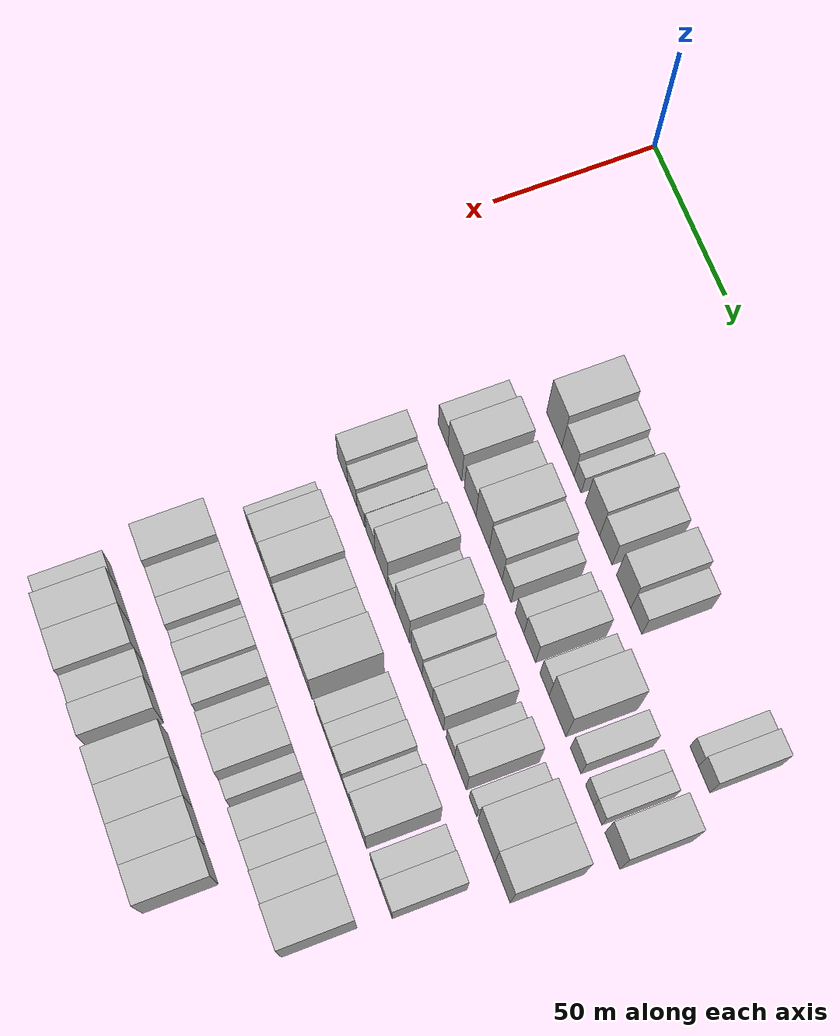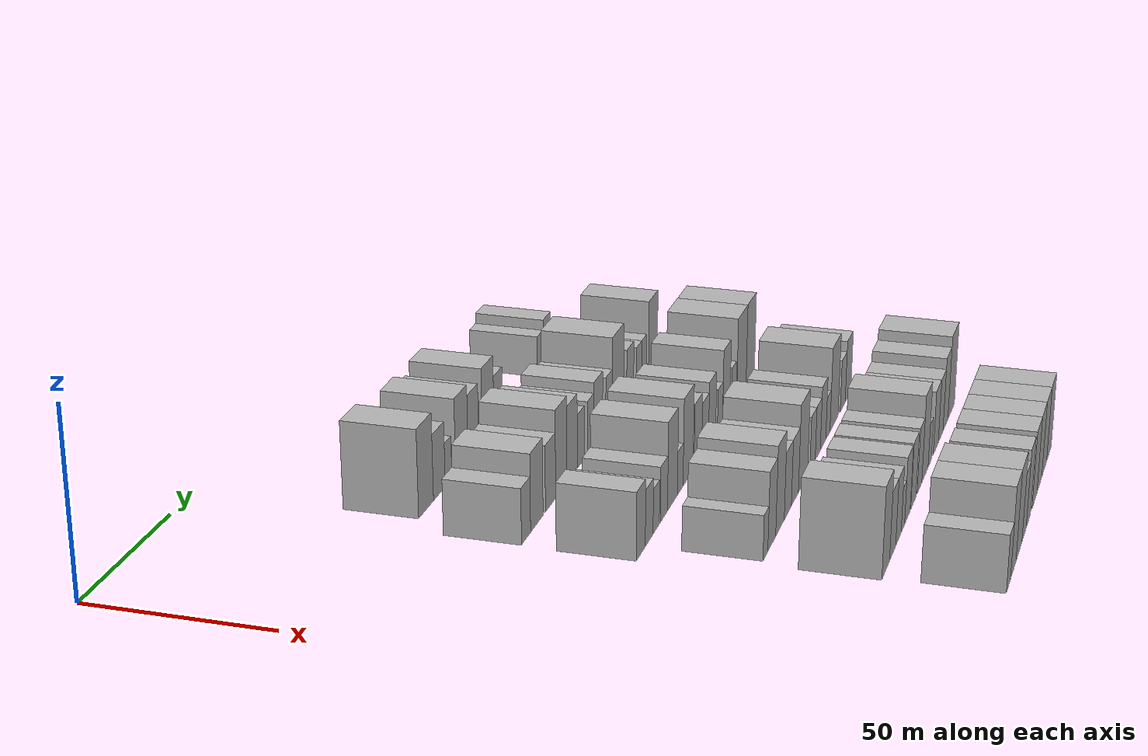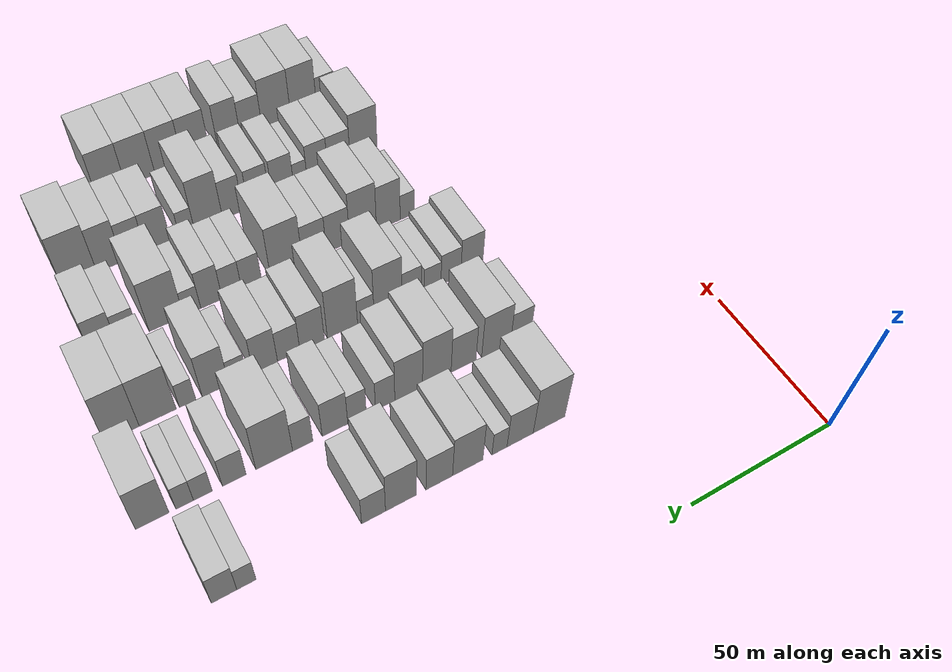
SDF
<sdf version="1.6">
 <world name="default">
  <model name="building_55">
   <static>1</static>
   <pose>50.0000 70.1673 0 0.000000 0.000000 0.000000</pose>
   <link name="link">
    <pose>0 0 12.00 0 0 0</pose>
    <collision name="collision"><geometry><box><size>20.0000 10.9141 24.0000</size></box></geometry></collision>
    <visual name="visual">
     <cast_shadows>0</cast_shadows>
     <geometry><box><size>20.0000 10.9141 24.0000</size></box></geometry>
     <material>
      <script>
       <uri>model://HANNAS_wall/materials/scripts</uri>
       <uri>model://HANNAS_wall/materials/textures</uri>
       <name>vrc/HANNAS_wall</name>
      </script>
     </material>
    </visual>
   </link>
  </model>
  <model name="building_56">
   <static>1</static>
   <pose>50.0000 80.0565 0 0.000000 0.000000 0.000000</pose>
   <link name="link">
    <pose>0 0 9.00 0 0 0</pose>
    <collision name="collision"><geometry><box><size>20.0000 8.8642 18.0000</size></box></geometry></collision>
    <visual name="visual">
     <cast_shadows>0</cast_shadows>
     <geometry><box><size>20.0000 8.8642 18.0000</size></box></geometry>
     <material>
      <script>
       <uri>model://HANNAS_wall/materials/scripts</uri>
       <uri>model://HANNAS_wall/materials/textures</uri>
       <name>vrc/HANNAS_wall</name>
      </script>
     </material>
    </visual>
   </link>
  </model>
  <model name="building_57">
   <static>1</static>
   <pose>50.0000 87.0178 0 0.000000 0.000000 0.000000</pose>
   <link name="link">
    <pose>0 0 6.00 0 0 0</pose>
    <collision name="collision"><geometry><box><size>20.0000 5.0583 12.0000</size></box></geometry></collision>
    <visual name="visual">
     <cast_shadows>0</cast_shadows>
     <geometry><box><size>20.0000 5.0583 12.0000</size></box></geometry>
     <material>
      <script>
       <uri>model://HANNAS_wall/materials/scripts</uri>
       <uri>model://HANNAS_wall/materials/textures</uri>
       <name>vrc/HANNAS_wall</name>
      </script>
     </material>
    </visual>
   </link>
  </model>
  <model name="building_58">
   <static>1</static>
   <pose>50.0000 97.5212 0 0.000000 0.000000 0.000000</pose>
   <link name="link">
    <pose>0 0 10.50 0 0 0</pose>
    <collision name="collision"><geometry><box><size>20.0000 9.9485 21.0000</size></box></geometry></collision>
    <visual name="visual">
     <cast_shadows>0</cast_shadows>
     <geometry><box><size>20.0000 9.9485 21.0000</size></box></geometry>
     <material>
      <script>
       <uri>model://HANNAS_wall/materials/scripts</uri>
       <uri>model://HANNAS_wall/materials/textures</uri>
       <name>vrc/HANNAS_wall</name>
      </script>
     </material>
    </visual>
   </link>
  </model>
  <model name="building_59">
   <static>1</static>
   <pose>50.0000 106.7962 0 0.000000 0.000000 0.000000</pose>
   <link name="link">
    <pose>0 0 9.00 0 0 0</pose>
    <collision name="collision"><geometry><box><size>20.0000 8.6015 18.0000</size></box></geometry></collision>
    <visual name="visual">
     <cast_shadows>0</cast_shadows>
     <geometry><box><size>20.0000 8.6015 18.0000</size></box></geometry>
     <material>
      <script>
       <uri>model://HANNAS_wall/materials/scripts</uri>
       <uri>model://HANNAS_wall/materials/textures</uri>
       <name>vrc/HANNAS_wall</name>
      </script>
     </material>
    </visual>
   </link>
  </model>
  <model name="building_60">
   <static>1</static>
   <pose>50.0000 118.9928 0 0.000000 0.000000 0.000000</pose>
   <link name="link">
    <pose>0 0 10.50 0 0 0</pose>
    <collision name="collision"><geometry><box><size>20.0000 9.7918 21.0000</size></box></geometry></collision>
    <visual name="visual">
     <cast_shadows>0</cast_shadows>
     <geometry><box><size>20.0000 9.7918 21.0000</size></box></geometry>
     <material>
      <script>
       <uri>model://HANNAS_wall/materials/scripts</uri>
       <uri>model://HANNAS_wall/materials/textures</uri>
       <name>vrc/HANNAS_wall</name>
      </script>
     </material>
    </visual>
   </link>
  </model>
  <model name="building_61">
   <static>1</static>
   <pose>50.0000 127.6068 0 0.000000 0.000000 0.000000</pose>
   <link name="link">
    <pose>0 0 7.50 0 0 0</pose>
    <collision name="collision"><geometry><box><size>20.0000 7.4362 15.0000</size></box></geometry></collision>
    <visual name="visual">
     <cast_shadows>0</cast_shadows>
     <geometry><box><size>20.0000 7.4362 15.0000</size></box></geometry>
     <material>
      <script>
       <uri>model://HANNAS_wall/materials/scripts</uri>
       <uri>model://HANNAS_wall/materials/textures</uri>
       <name>vrc/HANNAS_wall</name>
      </script>
     </material>
    </visual>
   </link>
  </model>
  <model name="building_62">
   <static>1</static>
   <pose>50.0000 165.6647 0 0.000000 0.000000 0.000000</pose>
   <link name="link">
    <pose>0 0 6.00 0 0 0</pose>
    <collision name="collision"><geometry><box><size>20.0000 5.5599 12.0000</size></box></geometry></collision>
    <visual name="visual">
     <cast_shadows>0</cast_shadows>
     <geometry><box><size>20.0000 5.5599 12.0000</size></box></geometry>
     <material>
      <script>
       <uri>model://HANNAS_wall/materials/scripts</uri>
       <uri>model://HANNAS_wall/materials/textures</uri>
       <name>vrc/HANNAS_wall</name>
      </script>
     </material>
    </visual>
   </link>
  </model>
  <model name="building_63">
   <static>1</static>
   <pose>50.0000 172.0886 0 0.000000 0.000000 0.000000</pose>
   <link name="link">
    <pose>0 0 7.50 0 0 0</pose>
    <collision name="collision"><geometry><box><size>20.0000 7.2879 15.0000</size></box></geometry></collision>
    <visual name="visual">
     <cast_shadows>0</cast_shadows>
     <geometry><box><size>20.0000 7.2879 15.0000</size></box></geometry>
     <material>
      <script>
       <uri>model://HANNAS_wall/materials/scripts</uri>
       <uri>model://HANNAS_wall/materials/textures</uri>
       <name>vrc/HANNAS_wall</name>
      </script>
     </material>
    </visual>
   </link>
  </model>
  <model name="building_159">
   <static>1</static>
   <pose>79.0000 61.1134 0 0.000000 0.000000 0.000000</pose>
   <link name="link">
    <pose>0 0 7.50 0 0 0</pose>
    <collision name="collision"><geometry><box><size>20.0000 7.3137 15.0000</size></box></geometry></collision>
    <visual name="visual">
     <cast_shadows>0</cast_shadows>
     <geometry><box><size>20.0000 7.3137 15.0000</size></box></geometry>
     <material>
      <script>
       <uri>model://HANNAS_wall/materials/scripts</uri>
       <uri>model://HANNAS_wall/materials/textures</uri>
       <name>vrc/HANNAS_wall</name>
      </script>
     </material>
    </visual>
   </link>
  </model>
  <model name="building_160">
   <static>1</static>
   <pose>79.0000 69.8865 0 0.000000 0.000000 0.000000</pose>
   <link name="link">
    <pose>0 0 10.50 0 0 0</pose>
    <collision name="collision"><geometry><box><size>20.0000 10.2325 21.0000</size></box></geometry></collision>
    <visual name="visual">
     <cast_shadows>0</cast_shadows>
     <geometry><box><size>20.0000 10.2325 21.0000</size></box></geometry>
     <material>
      <script>
       <uri>model://HANNAS_wall/materials/scripts</uri>
       <uri>model://HANNAS_wall/materials/textures</uri>
       <name>vrc/HANNAS_wall</name>
      </script>
     </material>
    </visual>
   </link>
  </model>
  <model name="building_161">
   <static>1</static>
   <pose>79.0000 81.3385 0 0.000000 0.000000 0.000000</pose>
   <link name="link">
    <pose>0 0 9.00 0 0 0</pose>
    <collision name="collision"><geometry><box><size>20.0000 8.6715 18.0000</size></box></geometry></collision>
    <visual name="visual">
     <cast_shadows>0</cast_shadows>
     <geometry><box><size>20.0000 8.6715 18.0000</size></box></geometry>
     <material>
      <script>
       <uri>model://HANNAS_wall/materials/scripts</uri>
       <uri>model://HANNAS_wall/materials/textures</uri>
       <name>vrc/HANNAS_wall</name>
      </script>
     </material>
    </visual>
   </link>
  </model>
  <model name="building_162">
   <static>1</static>
   <pose>79.0000 90.5679 0 0.000000 0.000000 0.000000</pose>
   <link name="link">
    <pose>0 0 12.00 0 0 0</pose>
    <collision name="collision"><geometry><box><size>20.0000 9.7873 24.0000</size></box></geometry></collision>
    <visual name="visual">
     <cast_shadows>0</cast_shadows>
     <geometry><box><size>20.0000 9.7873 24.0000</size></box></geometry>
     <material>
      <script>
       <uri>model://HANNAS_wall/materials/scripts</uri>
       <uri>model://HANNAS_wall/materials/textures</uri>
       <name>vrc/HANNAS_wall</name>
      </script>
     </material>
    </visual>
   </link>
  </model>
  <model name="building_163">
   <static>1</static>
   <pose>79.0000 100.1142 0 0.000000 0.000000 0.000000</pose>
   <link name="link">
    <pose>0 0 10.50 0 0 0</pose>
    <collision name="collision"><geometry><box><size>20.0000 9.3052 21.0000</size></box></geometry></collision>
    <visual name="visual">
     <cast_shadows>0</cast_shadows>
     <geometry><box><size>20.0000 9.3052 21.0000</size></box></geometry>
     <material>
      <script>
       <uri>model://HANNAS_wall/materials/scripts</uri>
       <uri>model://HANNAS_wall/materials/textures</uri>
       <name>vrc/HANNAS_wall</name>
      </script>
     </material>
    </visual>
   </link>
  </model>
  <model name="building_164">
   <static>1</static>
   <pose>79.0000 107.9700 0 0.000000 0.000000 0.000000</pose>
   <link name="link">
    <pose>0 0 7.50 0 0 0</pose>
    <collision name="collision"><geometry><box><size>20.0000 6.4063 15.0000</size></box></geometry></collision>
    <visual name="visual">
     <cast_shadows>0</cast_shadows>
     <geometry><box><size>20.0000 6.4063 15.0000</size></box></geometry>
     <material>
      <script>
       <uri>model://HANNAS_wall/materials/scripts</uri>
       <uri>model://HANNAS_wall/materials/textures</uri>
       <name>vrc/HANNAS_wall</name>
      </script>
     </material>
    </visual>
   </link>
  </model>
  <model name="building_165">
   <static>1</static>
   <pose>79.0000 117.2138 0 0.000000 0.000000 0.000000</pose>
   <link name="link">
    <pose>0 0 7.50 0 0 0</pose>
    <collision name="collision"><geometry><box><size>20.0000 6.0814 15.0000</size></box></geometry></collision>
    <visual name="visual">
     <cast_shadows>0</cast_shadows>
     <geometry><box><size>20.0000 6.0814 15.0000</size></box></geometry>
     <material>
      <script>
       <uri>model://HANNAS_wall/materials/scripts</uri>
       <uri>model://HANNAS_wall/materials/textures</uri>
       <name>vrc/HANNAS_wall</name>
      </script>
     </material>
    </visual>
   </link>
  </model>
  <model name="building_166">
   <static>1</static>
   <pose>79.0000 124.3797 0 0.000000 0.000000 0.000000</pose>
   <link name="link">
    <pose>0 0 9.00 0 0 0</pose>
    <collision name="collision"><geometry><box><size>20.0000 8.2504 18.0000</size></box></geometry></collision>
    <visual name="visual">
     <cast_shadows>0</cast_shadows>
     <geometry><box><size>20.0000 8.2504 18.0000</size></box></geometry>
     <material>
      <script>
       <uri>model://HANNAS_wall/materials/scripts</uri>
       <uri>model://HANNAS_wall/materials/textures</uri>
       <name>vrc/HANNAS_wall</name>
      </script>
     </material>
    </visual>
   </link>
  </model>
  <model name="building_167">
   <static>1</static>
   <pose>79.0000 134.7165 0 0.000000 0.000000 0.000000</pose>
   <link name="link">
    <pose>0 0 7.50 0 0 0</pose>
    <collision name="collision"><geometry><box><size>20.0000 6.4233 15.0000</size></box></geometry></collision>
    <visual name="visual">
     <cast_shadows>0</cast_shadows>
     <geometry><box><size>20.0000 6.4233 15.0000</size></box></geometry>
     <material>
      <script>
       <uri>model://HANNAS_wall/materials/scripts</uri>
       <uri>model://HANNAS_wall/materials/textures</uri>
       <name>vrc/HANNAS_wall</name>
      </script>
     </material>
    </visual>
   </link>
  </model>
  <model name="building_168">
   <static>1</static>
   <pose>79.0000 143.6607 0 0.000000 0.000000 0.000000</pose>
   <link name="link">
    <pose>0 0 12.00 0 0 0</pose>
    <collision name="collision"><geometry><box><size>20.0000 11.4652 24.0000</size></box></geometry></collision>
    <visual name="visual">
     <cast_shadows>0</cast_shadows>
     <geometry><box><size>20.0000 11.4652 24.0000</size></box></geometry>
     <material>
      <script>
       <uri>model://HANNAS_wall/materials/scripts</uri>
       <uri>model://HANNAS_wall/materials/textures</uri>
       <name>vrc/HANNAS_wall</name>
      </script>
     </material>
    </visual>
   </link>
  </model>
  <model name="building_169">
   <static>1</static>
   <pose>79.0000 156.0137 0 0.000000 0.000000 0.000000</pose>
   <link name="link">
    <pose>0 0 7.50 0 0 0</pose>
    <collision name="collision"><geometry><box><size>20.0000 7.2407 15.0000</size></box></geometry></collision>
    <visual name="visual">
     <cast_shadows>0</cast_shadows>
     <geometry><box><size>20.0000 7.2407 15.0000</size></box></geometry>
     <material>
      <script>
       <uri>model://HANNAS_wall/materials/scripts</uri>
       <uri>model://HANNAS_wall/materials/textures</uri>
       <name>vrc/HANNAS_wall</name>
      </script>
     </material>
    </visual>
   </link>
  </model>
  <model name="building_170">
   <static>1</static>
   <pose>79.0000 165.4747 0 0.000000 0.000000 0.000000</pose>
   <link name="link">
    <pose>0 0 6.00 0 0 0</pose>
    <collision name="collision"><geometry><box><size>20.0000 5.6814 12.0000</size></box></geometry></collision>
    <visual name="visual">
     <cast_shadows>0</cast_shadows>
     <geometry><box><size>20.0000 5.6814 12.0000</size></box></geometry>
     <material>
      <script>
       <uri>model://HANNAS_wall/materials/scripts</uri>
       <uri>model://HANNAS_wall/materials/textures</uri>
       <name>vrc/HANNAS_wall</name>
      </script>
     </material>
    </visual>
   </link>
  </model>
  <model name="building_171">
   <static>1</static>
   <pose>79.0000 170.9212 0 0.000000 0.000000 0.000000</pose>
   <link name="link">
    <pose>0 0 6.00 0 0 0</pose>
    <collision name="collision"><geometry><box><size>20.0000 5.2117 12.0000</size></box></geometry></collision>
    <visual name="visual">
     <cast_shadows>0</cast_shadows>
     <geometry><box><size>20.0000 5.2117 12.0000</size></box></geometry>
     <material>
      <script>
       <uri>model://HANNAS_wall/materials/scripts</uri>
       <uri>model://HANNAS_wall/materials/textures</uri>
       <name>vrc/HANNAS_wall</name>
      </script>
     </material>
    </visual>
   </link>
  </model>
  <model name="building_172">
   <static>1</static>
   <pose>79.0000 180.4384 0 0.000000 0.000000 0.000000</pose>
   <link name="link">
    <pose>0 0 10.50 0 0 0</pose>
    <collision name="collision"><geometry><box><size>20.0000 9.8226 21.0000</size></box></geometry></collision>
    <visual name="visual">
     <cast_shadows>0</cast_shadows>
     <geometry><box><size>20.0000 9.8226 21.0000</size></box></geometry>
     <material>
      <script>
       <uri>model://HANNAS_wall/materials/scripts</uri>
       <uri>model://HANNAS_wall/materials/textures</uri>
       <name>vrc/HANNAS_wall</name>
      </script>
     </material>
    </visual>
   </link>
  </model>
  <model name="building_272">
   <static>1</static>
   <pose>108.0000 60.7946 0 0.000000 0.000000 0.000000</pose>
   <link name="link">
    <pose>0 0 9.00 0 0 0</pose>
    <collision name="collision"><geometry><box><size>20.0000 8.0808 18.0000</size></box></geometry></collision>
    <visual name="visual">
     <cast_shadows>0</cast_shadows>
     <geometry><box><size>20.0000 8.0808 18.0000</size></box></geometry>
     <material>
      <script>
       <uri>model://HANNAS_wall/materials/scripts</uri>
       <uri>model://HANNAS_wall/materials/textures</uri>
       <name>vrc/HANNAS_wall</name>
      </script>
     </material>
    </visual>
   </link>
  </model>
  <model name="building_273">
   <static>1</static>
   <pose>108.0000 68.4565 0 0.000000 0.000000 0.000000</pose>
   <link name="link">
    <pose>0 0 7.50 0 0 0</pose>
    <collision name="collision"><geometry><box><size>20.0000 7.2431 15.0000</size></box></geometry></collision>
    <visual name="visual">
     <cast_shadows>0</cast_shadows>
     <geometry><box><size>20.0000 7.2431 15.0000</size></box></geometry>
     <material>
      <script>
       <uri>model://HANNAS_wall/materials/scripts</uri>
       <uri>model://HANNAS_wall/materials/textures</uri>
       <name>vrc/HANNAS_wall</name>
      </script>
     </material>
    </visual>
   </link>
  </model>
  <model name="building_274">
   <static>1</static>
   <pose>108.0000 75.0674 0 0.000000 0.000000 0.000000</pose>
   <link name="link">
    <pose>0 0 6.00 0 0 0</pose>
    <collision name="collision"><geometry><box><size>20.0000 5.9787 12.0000</size></box></geometry></collision>
    <visual name="visual">
     <cast_shadows>0</cast_shadows>
     <geometry><box><size>20.0000 5.9787 12.0000</size></box></geometry>
     <material>
      <script>
       <uri>model://HANNAS_wall/materials/scripts</uri>
       <uri>model://HANNAS_wall/materials/textures</uri>
       <name>vrc/HANNAS_wall</name>
      </script>
     </material>
    </visual>
   </link>
  </model>
  <model name="building_275">
   <static>1</static>
   <pose>108.0000 82.5405 0 0.000000 0.000000 0.000000</pose>
   <link name="link">
    <pose>0 0 7.50 0 0 0</pose>
    <collision name="collision"><geometry><box><size>20.0000 6.9673 15.0000</size></box></geometry></collision>
    <visual name="visual">
     <cast_shadows>0</cast_shadows>
     <geometry><box><size>20.0000 6.9673 15.0000</size></box></geometry>
     <material>
      <script>
       <uri>model://HANNAS_wall/materials/scripts</uri>
       <uri>model://HANNAS_wall/materials/textures</uri>
       <name>vrc/HANNAS_wall</name>
      </script>
     </material>
    </visual>
   </link>
  </model>
  <model name="building_276">
   <static>1</static>
   <pose>108.0000 90.9466 0 0.000000 0.000000 0.000000</pose>
   <link name="link">
    <pose>0 0 12.00 0 0 0</pose>
    <collision name="collision"><geometry><box><size>20.0000 9.8450 24.0000</size></box></geometry></collision>
    <visual name="visual">
     <cast_shadows>0</cast_shadows>
     <geometry><box><size>20.0000 9.8450 24.0000</size></box></geometry>
     <material>
      <script>
       <uri>model://HANNAS_wall/materials/scripts</uri>
       <uri>model://HANNAS_wall/materials/textures</uri>
       <name>vrc/HANNAS_wall</name>
      </script>
     </material>
    </visual>
   </link>
  </model>
  <model name="building_277">
   <static>1</static>
   <pose>108.0000 98.7513 0 0.000000 0.000000 0.000000</pose>
   <link name="link">
    <pose>0 0 6.00 0 0 0</pose>
    <collision name="collision"><geometry><box><size>20.0000 5.7643 12.0000</size></box></geometry></collision>
    <visual name="visual">
     <cast_shadows>0</cast_shadows>
     <geometry><box><size>20.0000 5.7643 12.0000</size></box></geometry>
     <material>
      <script>
       <uri>model://HANNAS_wall/materials/scripts</uri>
       <uri>model://HANNAS_wall/materials/textures</uri>
       <name>vrc/HANNAS_wall</name>
      </script>
     </material>
    </visual>
   </link>
  </model>
  <model name="building_278">
   <static>1</static>
   <pose>108.0000 106.8181 0 0.000000 0.000000 0.000000</pose>
   <link name="link">
    <pose>0 0 12.00 0 0 0</pose>
    <collision name="collision"><geometry><box><size>20.0000 10.3693 24.0000</size></box></geometry></collision>
    <visual name="visual">
     <cast_shadows>0</cast_shadows>
     <geometry><box><size>20.0000 10.3693 24.0000</size></box></geometry>
     <material>
      <script>
       <uri>model://HANNAS_wall/materials/scripts</uri>
       <uri>model://HANNAS_wall/materials/textures</uri>
       <name>vrc/HANNAS_wall</name>
      </script>
     </material>
    </visual>
   </link>
  </model>
  <model name="building_279">
   <static>1</static>
   <pose>108.0000 117.1142 0 0.000000 0.000000 0.000000</pose>
   <link name="link">
    <pose>0 0 9.00 0 0 0</pose>
    <collision name="collision"><geometry><box><size>20.0000 8.2231 18.0000</size></box></geometry></collision>
    <visual name="visual">
     <cast_shadows>0</cast_shadows>
     <geometry><box><size>20.0000 8.2231 18.0000</size></box></geometry>
     <material>
      <script>
       <uri>model://HANNAS_wall/materials/scripts</uri>
       <uri>model://HANNAS_wall/materials/textures</uri>
       <name>vrc/HANNAS_wall</name>
      </script>
     </material>
    </visual>
   </link>
  </model>
  <model name="building_280">
   <static>1</static>
   <pose>108.0000 124.9634 0 0.000000 0.000000 0.000000</pose>
   <link name="link">
    <pose>0 0 7.50 0 0 0</pose>
    <collision name="collision"><geometry><box><size>20.0000 7.4752 15.0000</size></box></geometry></collision>
    <visual name="visual">
     <cast_shadows>0</cast_shadows>
     <geometry><box><size>20.0000 7.4752 15.0000</size></box></geometry>
     <material>
      <script>
       <uri>model://HANNAS_wall/materials/scripts</uri>
       <uri>model://HANNAS_wall/materials/textures</uri>
       <name>vrc/HANNAS_wall</name>
      </script>
     </material>
    </visual>
   </link>
  </model>
  <model name="building_281">
   <static>1</static>
   <pose>108.0000 132.7012 0 0.000000 0.000000 0.000000</pose>
   <link name="link">
    <pose>0 0 9.00 0 0 0</pose>
    <collision name="collision"><geometry><box><size>20.0000 8.0004 18.0000</size></box></geometry></collision>
    <visual name="visual">
     <cast_shadows>0</cast_shadows>
     <geometry><box><size>20.0000 8.0004 18.0000</size></box></geometry>
     <material>
      <script>
       <uri>model://HANNAS_wall/materials/scripts</uri>
       <uri>model://HANNAS_wall/materials/textures</uri>
       <name>vrc/HANNAS_wall</name>
      </script>
     </material>
    </visual>
   </link>
  </model>
  <model name="building_282">
   <static>1</static>
   <pose>108.0000 141.6350 0 0.000000 0.000000 0.000000</pose>
   <link name="link">
    <pose>0 0 6.00 0 0 0</pose>
    <collision name="collision"><geometry><box><size>20.0000 5.8670 12.0000</size></box></geometry></collision>
    <visual name="visual">
     <cast_shadows>0</cast_shadows>
     <geometry><box><size>20.0000 5.8670 12.0000</size></box></geometry>
     <material>
      <script>
       <uri>model://HANNAS_wall/materials/scripts</uri>
       <uri>model://HANNAS_wall/materials/textures</uri>
       <name>vrc/HANNAS_wall</name>
      </script>
     </material>
    </visual>
   </link>
  </model>
  <model name="building_283">
   <static>1</static>
   <pose>108.0000 148.8267 0 0.000000 0.000000 0.000000</pose>
   <link name="link">
    <pose>0 0 10.50 0 0 0</pose>
    <collision name="collision"><geometry><box><size>20.0000 8.5165 21.0000</size></box></geometry></collision>
    <visual name="visual">
     <cast_shadows>0</cast_shadows>
     <geometry><box><size>20.0000 8.5165 21.0000</size></box></geometry>
     <material>
      <script>
       <uri>model://HANNAS_wall/materials/scripts</uri>
       <uri>model://HANNAS_wall/materials/textures</uri>
       <name>vrc/HANNAS_wall</name>
      </script>
     </material>
    </visual>
   </link>
  </model>
  <model name="building_284">
   <static>1</static>
   <pose>108.0000 157.6839 0 0.000000 0.000000 0.000000</pose>
   <link name="link">
    <pose>0 0 6.00 0 0 0</pose>
    <collision name="collision"><geometry><box><size>20.0000 5.1978 12.0000</size></box></geometry></collision>
    <visual name="visual">
     <cast_shadows>0</cast_shadows>
     <geometry><box><size>20.0000 5.1978 12.0000</size></box></geometry>
     <material>
      <script>
       <uri>model://HANNAS_wall/materials/scripts</uri>
       <uri>model://HANNAS_wall/materials/textures</uri>
       <name>vrc/HANNAS_wall</name>
      </script>
     </material>
    </visual>
   </link>
  </model>
  <model name="building_285">
   <static>1</static>
   <pose>108.0000 166.9945 0 0.000000 0.000000 0.000000</pose>
   <link name="link">
    <pose>0 0 12.00 0 0 0</pose>
    <collision name="collision"><geometry><box><size>20.0000 11.4235 24.0000</size></box></geometry></collision>
    <visual name="visual">
     <cast_shadows>0</cast_shadows>
     <geometry><box><size>20.0000 11.4235 24.0000</size></box></geometry>
     <material>
      <script>
       <uri>model://HANNAS_wall/materials/scripts</uri>
       <uri>model://HANNAS_wall/materials/textures</uri>
       <name>vrc/HANNAS_wall</name>
      </script>
     </material>
    </visual>
   </link>
  </model>
  <model name="building_286">
   <static>1</static>
   <pose>108.0000 178.0056 0 0.000000 0.000000 0.000000</pose>
   <link name="link">
    <pose>0 0 12.00 0 0 0</pose>
    <collision name="collision"><geometry><box><size>20.0000 10.5987 24.0000</size></box></geometry></collision>
    <visual name="visual">
     <cast_shadows>0</cast_shadows>
     <geometry><box><size>20.0000 10.5987 24.0000</size></box></geometry>
     <material>
      <script>
       <uri>model://HANNAS_wall/materials/scripts</uri>
       <uri>model://HANNAS_wall/materials/textures</uri>
       <name>vrc/HANNAS_wall</name>
      </script>
     </material>
    </visual>
   </link>
  </model>
  <model name="building_384">
   <static>1</static>
   <pose>137.0000 67.7495 0 0.000000 0.000000 0.000000</pose>
   <link name="link">
    <pose>0 0 6.00 0 0 0</pose>
    <collision name="collision"><geometry><box><size>20.0000 5.2936 12.0000</size></box></geometry></collision>
    <visual name="visual">
     <cast_shadows>0</cast_shadows>
     <geometry><box><size>20.0000 5.2936 12.0000</size></box></geometry>
     <material>
      <script>
       <uri>model://HANNAS_wall/materials/scripts</uri>
       <uri>model://HANNAS_wall/materials/textures</uri>
       <name>vrc/HANNAS_wall</name>
      </script>
     </material>
    </visual>
   </link>
  </model>
  <model name="building_385">
   <static>1</static>
   <pose>137.0000 74.7967 0 0.000000 0.000000 0.000000</pose>
   <link name="link">
    <pose>0 0 10.50 0 0 0</pose>
    <collision name="collision"><geometry><box><size>20.0000 8.8008 21.0000</size></box></geometry></collision>
    <visual name="visual">
     <cast_shadows>0</cast_shadows>
     <geometry><box><size>20.0000 8.8008 21.0000</size></box></geometry>
     <material>
      <script>
       <uri>model://HANNAS_wall/materials/scripts</uri>
       <uri>model://HANNAS_wall/materials/textures</uri>
       <name>vrc/HANNAS_wall</name>
      </script>
     </material>
    </visual>
   </link>
  </model>
  <model name="building_386">
   <static>1</static>
   <pose>137.0000 84.1135 0 0.000000 0.000000 0.000000</pose>
   <link name="link">
    <pose>0 0 12.00 0 0 0</pose>
    <collision name="collision"><geometry><box><size>20.0000 9.8328 24.0000</size></box></geometry></collision>
    <visual name="visual">
     <cast_shadows>0</cast_shadows>
     <geometry><box><size>20.0000 9.8328 24.0000</size></box></geometry>
     <material>
      <script>
       <uri>model://HANNAS_wall/materials/scripts</uri>
       <uri>model://HANNAS_wall/materials/textures</uri>
       <name>vrc/HANNAS_wall</name>
      </script>
     </material>
    </visual>
   </link>
  </model>
  <model name="building_387">
   <static>1</static>
   <pose>137.0000 93.2196 0 0.000000 0.000000 0.000000</pose>
   <link name="link">
    <pose>0 0 9.00 0 0 0</pose>
    <collision name="collision"><geometry><box><size>20.0000 8.3794 18.0000</size></box></geometry></collision>
    <visual name="visual">
     <cast_shadows>0</cast_shadows>
     <geometry><box><size>20.0000 8.3794 18.0000</size></box></geometry>
     <material>
      <script>
       <uri>model://HANNAS_wall/materials/scripts</uri>
       <uri>model://HANNAS_wall/materials/textures</uri>
       <name>vrc/HANNAS_wall</name>
      </script>
     </material>
    </visual>
   </link>
  </model>
  <model name="building_388">
   <static>1</static>
   <pose>137.0000 101.6664 0 0.000000 0.000000 0.000000</pose>
   <link name="link">
    <pose>0 0 9.00 0 0 0</pose>
    <collision name="collision"><geometry><box><size>20.0000 8.5141 18.0000</size></box></geometry></collision>
    <visual name="visual">
     <cast_shadows>0</cast_shadows>
     <geometry><box><size>20.0000 8.5141 18.0000</size></box></geometry>
     <material>
      <script>
       <uri>model://HANNAS_wall/materials/scripts</uri>
       <uri>model://HANNAS_wall/materials/textures</uri>
       <name>vrc/HANNAS_wall</name>
      </script>
     </material>
    </visual>
   </link>
  </model>
  <model name="building_389">
   <static>1</static>
   <pose>137.0000 111.5486 0 0.000000 0.000000 0.000000</pose>
   <link name="link">
    <pose>0 0 12.00 0 0 0</pose>
    <collision name="collision"><geometry><box><size>20.0000 11.2503 24.0000</size></box></geometry></collision>
    <visual name="visual">
     <cast_shadows>0</cast_shadows>
     <geometry><box><size>20.0000 11.2503 24.0000</size></box></geometry>
     <material>
      <script>
       <uri>model://HANNAS_wall/materials/scripts</uri>
       <uri>model://HANNAS_wall/materials/textures</uri>
       <name>vrc/HANNAS_wall</name>
      </script>
     </material>
    </visual>
   </link>
  </model>
  <model name="building_390">
   <static>1</static>
   <pose>137.0000 123.6178 0 0.000000 0.000000 0.000000</pose>
   <link name="link">
    <pose>0 0 7.50 0 0 0</pose>
    <collision name="collision"><geometry><box><size>20.0000 6.8882 15.0000</size></box></geometry></collision>
    <visual name="visual">
     <cast_shadows>0</cast_shadows>
     <geometry><box><size>20.0000 6.8882 15.0000</size></box></geometry>
     <material>
      <script>
       <uri>model://HANNAS_wall/materials/scripts</uri>
       <uri>model://HANNAS_wall/materials/textures</uri>
       <name>vrc/HANNAS_wall</name>
      </script>
     </material>
    </visual>
   </link>
  </model>
  <model name="building_391">
   <static>1</static>
   <pose>137.0000 130.3886 0 0.000000 0.000000 0.000000</pose>
   <link name="link">
    <pose>0 0 7.50 0 0 0</pose>
    <collision name="collision"><geometry><box><size>20.0000 6.6534 15.0000</size></box></geometry></collision>
    <visual name="visual">
     <cast_shadows>0</cast_shadows>
     <geometry><box><size>20.0000 6.6534 15.0000</size></box></geometry>
     <material>
      <script>
       <uri>model://HANNAS_wall/materials/scripts</uri>
       <uri>model://HANNAS_wall/materials/textures</uri>
       <name>vrc/HANNAS_wall</name>
      </script>
     </material>
    </visual>
   </link>
  </model>
  <model name="building_392">
   <static>1</static>
   <pose>137.0000 137.3278 0 0.000000 0.000000 0.000000</pose>
   <link name="link">
    <pose>0 0 9.00 0 0 0</pose>
    <collision name="collision"><geometry><box><size>20.0000 7.2250 18.0000</size></box></geometry></collision>
    <visual name="visual">
     <cast_shadows>0</cast_shadows>
     <geometry><box><size>20.0000 7.2250 18.0000</size></box></geometry>
     <material>
      <script>
       <uri>model://HANNAS_wall/materials/scripts</uri>
       <uri>model://HANNAS_wall/materials/textures</uri>
       <name>vrc/HANNAS_wall</name>
      </script>
     </material>
    </visual>
   </link>
  </model>
  <model name="building_393">
   <static>1</static>
   <pose>137.0000 143.8080 0 0.000000 0.000000 0.000000</pose>
   <link name="link">
    <pose>0 0 6.00 0 0 0</pose>
    <collision name="collision"><geometry><box><size>20.0000 5.7354 12.0000</size></box></geometry></collision>
    <visual name="visual">
     <cast_shadows>0</cast_shadows>
     <geometry><box><size>20.0000 5.7354 12.0000</size></box></geometry>
     <material>
      <script>
       <uri>model://HANNAS_wall/materials/scripts</uri>
       <uri>model://HANNAS_wall/materials/textures</uri>
       <name>vrc/HANNAS_wall</name>
      </script>
     </material>
    </visual>
   </link>
  </model>
  <model name="building_394">
   <static>1</static>
   <pose>137.0000 152.3232 0 0.000000 0.000000 0.000000</pose>
   <link name="link">
    <pose>0 0 12.00 0 0 0</pose>
    <collision name="collision"><geometry><box><size>20.0000 11.2950 24.0000</size></box></geometry></collision>
    <visual name="visual">
     <cast_shadows>0</cast_shadows>
     <geometry><box><size>20.0000 11.2950 24.0000</size></box></geometry>
     <material>
      <script>
       <uri>model://HANNAS_wall/materials/scripts</uri>
       <uri>model://HANNAS_wall/materials/textures</uri>
       <name>vrc/HANNAS_wall</name>
      </script>
     </material>
    </visual>
   </link>
  </model>
  <model name="building_395">
   <static>1</static>
   <pose>137.0000 164.5591 0 0.000000 0.000000 0.000000</pose>
   <link name="link">
    <pose>0 0 7.50 0 0 0</pose>
    <collision name="collision"><geometry><box><size>20.0000 7.1766 15.0000</size></box></geometry></collision>
    <visual name="visual">
     <cast_shadows>0</cast_shadows>
     <geometry><box><size>20.0000 7.1766 15.0000</size></box></geometry>
     <material>
      <script>
       <uri>model://HANNAS_wall/materials/scripts</uri>
       <uri>model://HANNAS_wall/materials/textures</uri>
       <name>vrc/HANNAS_wall</name>
      </script>
     </material>
    </visual>
   </link>
  </model>
  <model name="building_396">
   <static>1</static>
   <pose>137.0000 172.2917 0 0.000000 0.000000 0.000000</pose>
   <link name="link">
    <pose>0 0 9.00 0 0 0</pose>
    <collision name="collision"><geometry><box><size>20.0000 8.2886 18.0000</size></box></geometry></collision>
    <visual name="visual">
     <cast_shadows>0</cast_shadows>
     <geometry><box><size>20.0000 8.2886 18.0000</size></box></geometry>
     <material>
      <script>
       <uri>model://HANNAS_wall/materials/scripts</uri>
       <uri>model://HANNAS_wall/materials/textures</uri>
       <name>vrc/HANNAS_wall</name>
      </script>
     </material>
    </visual>
   </link>
  </model>
  <model name="building_501">
   <static>1</static>
   <pose>166.0000 68.2287 0 0.000000 0.000000 0.000000</pose>
   <link name="link">
    <pose>0 0 12.00 0 0 0</pose>
    <collision name="collision"><geometry><box><size>20.0000 10.3960 24.0000</size></box></geometry></collision>
    <visual name="visual">
     <cast_shadows>0</cast_shadows>
     <geometry><box><size>20.0000 10.3960 24.0000</size></box></geometry>
     <material>
      <script>
       <uri>model://HANNAS_wall/materials/scripts</uri>
       <uri>model://HANNAS_wall/materials/textures</uri>
       <name>vrc/HANNAS_wall</name>
      </script>
     </material>
    </visual>
   </link>
  </model>
  <model name="building_502">
   <static>1</static>
   <pose>166.0000 77.6732 0 0.000000 0.000000 0.000000</pose>
   <link name="link">
    <pose>0 0 9.00 0 0 0</pose>
    <collision name="collision"><geometry><box><size>20.0000 8.4931 18.0000</size></box></geometry></collision>
    <visual name="visual">
     <cast_shadows>0</cast_shadows>
     <geometry><box><size>20.0000 8.4931 18.0000</size></box></geometry>
     <material>
      <script>
       <uri>model://HANNAS_wall/materials/scripts</uri>
       <uri>model://HANNAS_wall/materials/textures</uri>
       <name>vrc/HANNAS_wall</name>
      </script>
     </material>
    </visual>
   </link>
  </model>
  <model name="building_503">
   <static>1</static>
   <pose>166.0000 85.7731 0 0.000000 0.000000 0.000000</pose>
   <link name="link">
    <pose>0 0 9.00 0 0 0</pose>
    <collision name="collision"><geometry><box><size>20.0000 7.7066 18.0000</size></box></geometry></collision>
    <visual name="visual">
     <cast_shadows>0</cast_shadows>
     <geometry><box><size>20.0000 7.7066 18.0000</size></box></geometry>
     <material>
      <script>
       <uri>model://HANNAS_wall/materials/scripts</uri>
       <uri>model://HANNAS_wall/materials/textures</uri>
       <name>vrc/HANNAS_wall</name>
      </script>
     </material>
    </visual>
   </link>
  </model>
  <model name="building_504">
   <static>1</static>
   <pose>166.0000 92.1302 0 0.000000 0.000000 0.000000</pose>
   <link name="link">
    <pose>0 0 6.00 0 0 0</pose>
    <collision name="collision"><geometry><box><size>20.0000 5.0077 12.0000</size></box></geometry></collision>
    <visual name="visual">
     <cast_shadows>0</cast_shadows>
     <geometry><box><size>20.0000 5.0077 12.0000</size></box></geometry>
     <material>
      <script>
       <uri>model://HANNAS_wall/materials/scripts</uri>
       <uri>model://HANNAS_wall/materials/textures</uri>
       <name>vrc/HANNAS_wall</name>
      </script>
     </material>
    </visual>
   </link>
  </model>
  <model name="building_505">
   <static>1</static>
   <pose>166.0000 98.6277 0 0.000000 0.000000 0.000000</pose>
   <link name="link">
    <pose>0 0 9.00 0 0 0</pose>
    <collision name="collision"><geometry><box><size>20.0000 7.9871 18.0000</size></box></geometry></collision>
    <visual name="visual">
     <cast_shadows>0</cast_shadows>
     <geometry><box><size>20.0000 7.9871 18.0000</size></box></geometry>
     <material>
      <script>
       <uri>model://HANNAS_wall/materials/scripts</uri>
       <uri>model://HANNAS_wall/materials/textures</uri>
       <name>vrc/HANNAS_wall</name>
      </script>
     </material>
    </visual>
   </link>
  </model>
  <model name="building_506">
   <static>1</static>
   <pose>166.0000 107.4903 0 0.000000 0.000000 0.000000</pose>
   <link name="link">
    <pose>0 0 9.00 0 0 0</pose>
    <collision name="collision"><geometry><box><size>20.0000 7.7382 18.0000</size></box></geometry></collision>
    <visual name="visual">
     <cast_shadows>0</cast_shadows>
     <geometry><box><size>20.0000 7.7382 18.0000</size></box></geometry>
     <material>
      <script>
       <uri>model://HANNAS_wall/materials/scripts</uri>
       <uri>model://HANNAS_wall/materials/textures</uri>
       <name>vrc/HANNAS_wall</name>
      </script>
     </material>
    </visual>
   </link>
  </model>
  <model name="building_507">
   <static>1</static>
   <pose>166.0000 116.9608 0 0.000000 0.000000 0.000000</pose>
   <link name="link">
    <pose>0 0 9.00 0 0 0</pose>
    <collision name="collision"><geometry><box><size>20.0000 7.2027 18.0000</size></box></geometry></collision>
    <visual name="visual">
     <cast_shadows>0</cast_shadows>
     <geometry><box><size>20.0000 7.2027 18.0000</size></box></geometry>
     <material>
      <script>
       <uri>model://HANNAS_wall/materials/scripts</uri>
       <uri>model://HANNAS_wall/materials/textures</uri>
       <name>vrc/HANNAS_wall</name>
      </script>
     </material>
    </visual>
   </link>
  </model>
  <model name="building_508">
   <static>1</static>
   <pose>166.0000 125.5343 0 0.000000 0.000000 0.000000</pose>
   <link name="link">
    <pose>0 0 12.00 0 0 0</pose>
    <collision name="collision"><geometry><box><size>20.0000 9.9443 24.0000</size></box></geometry></collision>
    <visual name="visual">
     <cast_shadows>0</cast_shadows>
     <geometry><box><size>20.0000 9.9443 24.0000</size></box></geometry>
     <material>
      <script>
       <uri>model://HANNAS_wall/materials/scripts</uri>
       <uri>model://HANNAS_wall/materials/textures</uri>
       <name>vrc/HANNAS_wall</name>
      </script>
     </material>
    </visual>
   </link>
  </model>
  <model name="building_509">
   <static>1</static>
   <pose>166.0000 133.1405 0 0.000000 0.000000 0.000000</pose>
   <link name="link">
    <pose>0 0 6.00 0 0 0</pose>
    <collision name="collision"><geometry><box><size>20.0000 5.2681 12.0000</size></box></geometry></collision>
    <visual name="visual">
     <cast_shadows>0</cast_shadows>
     <geometry><box><size>20.0000 5.2681 12.0000</size></box></geometry>
     <material>
      <script>
       <uri>model://HANNAS_wall/materials/scripts</uri>
       <uri>model://HANNAS_wall/materials/textures</uri>
       <name>vrc/HANNAS_wall</name>
      </script>
     </material>
    </visual>
   </link>
  </model>
  <model name="building_510">
   <static>1</static>
   <pose>166.0000 143.0673 0 0.000000 0.000000 0.000000</pose>
   <link name="link">
    <pose>0 0 9.00 0 0 0</pose>
    <collision name="collision"><geometry><box><size>20.0000 8.5856 18.0000</size></box></geometry></collision>
    <visual name="visual">
     <cast_shadows>0</cast_shadows>
     <geometry><box><size>20.0000 8.5856 18.0000</size></box></geometry>
     <material>
      <script>
       <uri>model://HANNAS_wall/materials/scripts</uri>
       <uri>model://HANNAS_wall/materials/textures</uri>
       <name>vrc/HANNAS_wall</name>
      </script>
     </material>
    </visual>
   </link>
  </model>
  <model name="building_511">
   <static>1</static>
   <pose>166.0000 151.3015 0 0.000000 0.000000 0.000000</pose>
   <link name="link">
    <pose>0 0 9.00 0 0 0</pose>
    <collision name="collision"><geometry><box><size>20.0000 7.8828 18.0000</size></box></geometry></collision>
    <visual name="visual">
     <cast_shadows>0</cast_shadows>
     <geometry><box><size>20.0000 7.8828 18.0000</size></box></geometry>
     <material>
      <script>
       <uri>model://HANNAS_wall/materials/scripts</uri>
       <uri>model://HANNAS_wall/materials/textures</uri>
       <name>vrc/HANNAS_wall</name>
      </script>
     </material>
    </visual>
   </link>
  </model>
  <model name="building_512">
   <static>1</static>
   <pose>166.0000 159.5659 0 0.000000 0.000000 0.000000</pose>
   <link name="link">
    <pose>0 0 10.50 0 0 0</pose>
    <collision name="collision"><geometry><box><size>20.0000 8.6458 21.0000</size></box></geometry></collision>
    <visual name="visual">
     <cast_shadows>0</cast_shadows>
     <geometry><box><size>20.0000 8.6458 21.0000</size></box></geometry>
     <material>
      <script>
       <uri>model://HANNAS_wall/materials/scripts</uri>
       <uri>model://HANNAS_wall/materials/textures</uri>
       <name>vrc/HANNAS_wall</name>
      </script>
     </material>
    </visual>
   </link>
  </model>
  <model name="building_513">
   <static>1</static>
   <pose>166.0000 169.6954 0 0.000000 0.000000 0.000000</pose>
   <link name="link">
    <pose>0 0 12.00 0 0 0</pose>
    <collision name="collision"><geometry><box><size>20.0000 11.6133 24.0000</size></box></geometry></collision>
    <visual name="visual">
     <cast_shadows>0</cast_shadows>
     <geometry><box><size>20.0000 11.6133 24.0000</size></box></geometry>
     <material>
      <script>
       <uri>model://HANNAS_wall/materials/scripts</uri>
       <uri>model://HANNAS_wall/materials/textures</uri>
       <name>vrc/HANNAS_wall</name>
      </script>
     </material>
    </visual>
   </link>
  </model>
  <model name="building_614">
   <static>1</static>
   <pose>195.0000 67.8674 0 0.000000 0.000000 0.000000</pose>
   <link name="link">
    <pose>0 0 7.50 0 0 0</pose>
    <collision name="collision"><geometry><box><size>20.0000 7.2694 15.0000</size></box></geometry></collision>
    <visual name="visual">
     <cast_shadows>0</cast_shadows>
     <geometry><box><size>20.0000 7.2694 15.0000</size></box></geometry>
     <material>
      <script>
       <uri>model://HANNAS_wall/materials/scripts</uri>
       <uri>model://HANNAS_wall/materials/textures</uri>
       <name>vrc/HANNAS_wall</name>
      </script>
     </material>
    </visual>
   </link>
  </model>
  <model name="building_615">
   <static>1</static>
   <pose>195.0000 76.5326 0 0.000000 0.000000 0.000000</pose>
   <link name="link">
    <pose>0 0 12.00 0 0 0</pose>
    <collision name="collision"><geometry><box><size>20.0000 10.0609 24.0000</size></box></geometry></collision>
    <visual name="visual">
     <cast_shadows>0</cast_shadows>
     <geometry><box><size>20.0000 10.0609 24.0000</size></box></geometry>
     <material>
      <script>
       <uri>model://HANNAS_wall/materials/scripts</uri>
       <uri>model://HANNAS_wall/materials/textures</uri>
       <name>vrc/HANNAS_wall</name>
      </script>
     </material>
    </visual>
   </link>
  </model>
  <model name="building_616">
   <static>1</static>
   <pose>195.0000 87.0596 0 0.000000 0.000000 0.000000</pose>
   <link name="link">
    <pose>0 0 12.00 0 0 0</pose>
    <collision name="collision"><geometry><box><size>20.0000 10.9931 24.0000</size></box></geometry></collision>
    <visual name="visual">
     <cast_shadows>0</cast_shadows>
     <geometry><box><size>20.0000 10.9931 24.0000</size></box></geometry>
     <material>
      <script>
       <uri>model://HANNAS_wall/materials/scripts</uri>
       <uri>model://HANNAS_wall/materials/textures</uri>
       <name>vrc/HANNAS_wall</name>
      </script>
     </material>
    </visual>
   </link>
  </model>
  <model name="building_617">
   <static>1</static>
   <pose>195.0000 96.6774 0 0.000000 0.000000 0.000000</pose>
   <link name="link">
    <pose>0 0 9.00 0 0 0</pose>
    <collision name="collision"><geometry><box><size>20.0000 8.2425 18.0000</size></box></geometry></collision>
    <visual name="visual">
     <cast_shadows>0</cast_shadows>
     <geometry><box><size>20.0000 8.2425 18.0000</size></box></geometry>
     <material>
      <script>
       <uri>model://HANNAS_wall/materials/scripts</uri>
       <uri>model://HANNAS_wall/materials/textures</uri>
       <name>vrc/HANNAS_wall</name>
      </script>
     </material>
    </visual>
   </link>
  </model>
  <model name="building_618">
   <static>1</static>
   <pose>195.0000 105.0884 0 0.000000 0.000000 0.000000</pose>
   <link name="link">
    <pose>0 0 10.50 0 0 0</pose>
    <collision name="collision"><geometry><box><size>20.0000 8.5796 21.0000</size></box></geometry></collision>
    <visual name="visual">
     <cast_shadows>0</cast_shadows>
     <geometry><box><size>20.0000 8.5796 21.0000</size></box></geometry>
     <material>
      <script>
       <uri>model://HANNAS_wall/materials/scripts</uri>
       <uri>model://HANNAS_wall/materials/textures</uri>
       <name>vrc/HANNAS_wall</name>
      </script>
     </material>
    </visual>
   </link>
  </model>
  <model name="building_619">
   <static>1</static>
   <pose>195.0000 117.3675 0 0.000000 0.000000 0.000000</pose>
   <link name="link">
    <pose>0 0 10.50 0 0 0</pose>
    <collision name="collision"><geometry><box><size>20.0000 9.9786 21.0000</size></box></geometry></collision>
    <visual name="visual">
     <cast_shadows>0</cast_shadows>
     <geometry><box><size>20.0000 9.9786 21.0000</size></box></geometry>
     <material>
      <script>
       <uri>model://HANNAS_wall/materials/scripts</uri>
       <uri>model://HANNAS_wall/materials/textures</uri>
       <name>vrc/HANNAS_wall</name>
      </script>
     </material>
    </visual>
   </link>
  </model>
  <model name="building_620">
   <static>1</static>
   <pose>195.0000 127.4112 0 0.000000 0.000000 0.000000</pose>
   <link name="link">
    <pose>0 0 10.50 0 0 0</pose>
    <collision name="collision"><geometry><box><size>20.0000 10.1087 21.0000</size></box></geometry></collision>
    <visual name="visual">
     <cast_shadows>0</cast_shadows>
     <geometry><box><size>20.0000 10.1087 21.0000</size></box></geometry>
     <material>
      <script>
       <uri>model://HANNAS_wall/materials/scripts</uri>
       <uri>model://HANNAS_wall/materials/textures</uri>
       <name>vrc/HANNAS_wall</name>
      </script>
     </material>
    </visual>
   </link>
  </model>
  <model name="building_621">
   <static>1</static>
   <pose>195.0000 137.6967 0 0.000000 0.000000 0.000000</pose>
   <link name="link">
    <pose>0 0 10.50 0 0 0</pose>
    <collision name="collision"><geometry><box><size>20.0000 10.4624 21.0000</size></box></geometry></collision>
    <visual name="visual">
     <cast_shadows>0</cast_shadows>
     <geometry><box><size>20.0000 10.4624 21.0000</size></box></geometry>
     <material>
      <script>
       <uri>model://HANNAS_wall/materials/scripts</uri>
       <uri>model://HANNAS_wall/materials/textures</uri>
       <name>vrc/HANNAS_wall</name>
      </script>
     </material>
    </visual>
   </link>
  </model>
  <model name="building_622">
   <static>1</static>
   <pose>195.0000 148.0585 0 0.000000 0.000000 0.000000</pose>
   <link name="link">
    <pose>0 0 10.50 0 0 0</pose>
    <collision name="collision"><geometry><box><size>20.0000 10.2611 21.0000</size></box></geometry></collision>
    <visual name="visual">
     <cast_shadows>0</cast_shadows>
     <geometry><box><size>20.0000 10.2611 21.0000</size></box></geometry>
     <material>
      <script>
       <uri>model://HANNAS_wall/materials/scripts</uri>
       <uri>model://HANNAS_wall/materials/textures</uri>
       <name>vrc/HANNAS_wall</name>
      </script>
     </material>
    </visual>
   </link>
  </model>
 </world>
</sdf>
